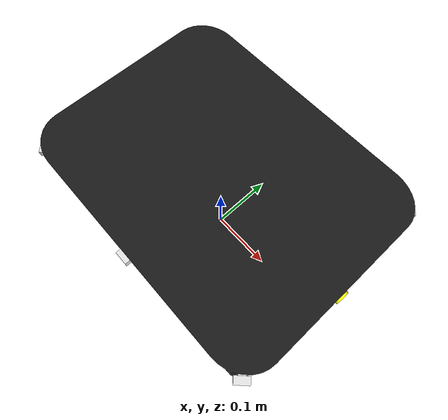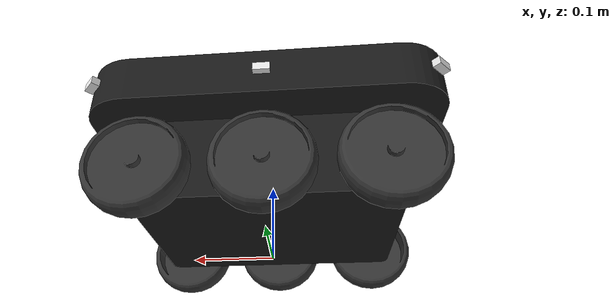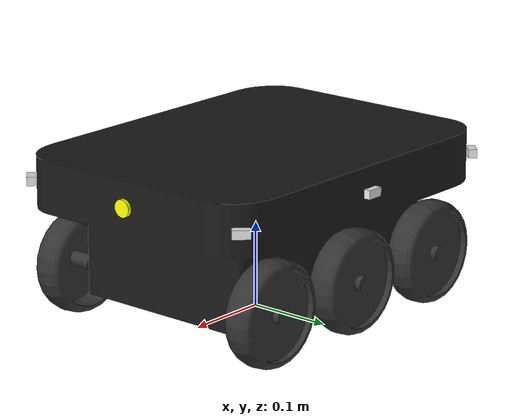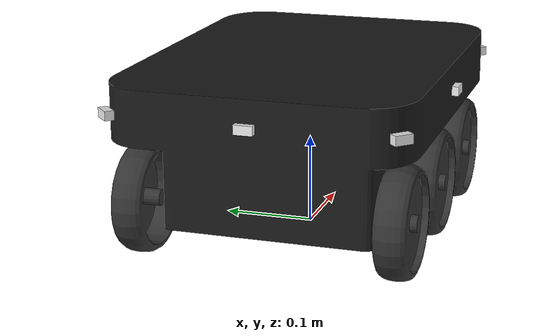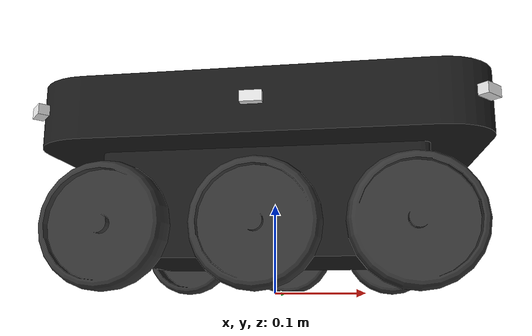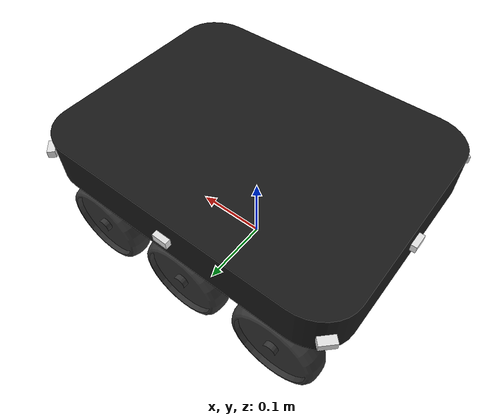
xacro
<?xml version="1.0"?>
<robot xmlns:controller="http://playerstage.sourceforge.net/gazebo/xmlschema/#controller"
  xmlns:interface="http://playerstage.sourceforge.net/gazebo/xmlschema/#interface"
  xmlns:sensor="http://playerstage.sourceforge.net/gazebo/xmlschema/#sensor"
  xmlns:xacro="http://ros.org/wiki/xacro"
  name="kurt_indoor_base">

  <include filename="$(find uos_common_urdf)/common.xacro" />
  <include filename="$(find kurt_base)/urdf/infrared_sonar.urdf.xacro" />
  <include filename="$(find uos_common_urdf)/urdf/imu.gazebo.urdf.xacro" />

  <xacro:property name="wheel_width" value="0.035" />
  <xacro:property name="wheel_radius" value="0.060319723" /> <!-- corresponds to wheel_perimeter=0.379 -->
  <xacro:property name="axis_length" value="0.28" />
  <xacro:property name="middle_axis_length" value="0.28" />
  <xacro:property name="wheel_x_offset" value="0.14" />
  <xacro:property name="wheel_z_offset" value="-0.107" />
  <xacro:property name="turning_adaptation" value="0.69" />
  <xacro:property name="mass" value="15.6" />
  <xacro:property name="imu_stdev" value="0.00017" />

  <link name="base_link">
    <visual>
      <origin xyz="0 0 0" rpy="0 0 0" />
      <geometry>
        <mesh filename="package://kurt_base/meshes/kurt_base_indoor.stl" />
      </geometry>

      <material name="black" >
        <color rgba="0.1 0.1 0.1 1" />
      </material>
    </visual>
    <collision>
      <origin xyz="0 0 0" rpy="0 0 0" />
      <geometry>
        <mesh filename="package://kurt_base/meshes/kurt_base_indoor.stl" />
      </geometry>
    </collision>
    <inertial>
      <mass value="${mass}" />
      <origin xyz="0.0 0.0 -0.040426445" />
      <inertia ixx="${mass * 0.007597848}" ixy="0.0" ixz="0.0"
        iyy="${mass * 0.012357128}" iyz="0.0"
        izz="${mass * 0.015397958}" />
    </inertial>
  </link>

  <gazebo reference="base_link">
    <material value="Gazebo/Black" />
  </gazebo>

  <gazebo>
    <plugin name="kurt_controller" filename="libgazebo_ros_diffdrive_uos.so">
      <alwaysOn>true</alwaysOn>
      <cmd_vel_topic_name>cmd_vel</cmd_vel_topic_name>
      <odom_topic_name>odom</odom_topic_name>
      <joint_states_topic_name>joint_states</joint_states_topic_name>
      <left_front_wheel_joint>left_front_wheel_joint</left_front_wheel_joint>
      <left_middle_wheel_joint>left_middle_wheel_joint</left_middle_wheel_joint>
      <left_rear_wheel_joint>left_rear_wheel_joint</left_rear_wheel_joint>
      <right_front_wheel_joint>right_front_wheel_joint</right_front_wheel_joint>
      <right_middle_wheel_joint>right_middle_wheel_joint</right_middle_wheel_joint>
      <right_rear_wheel_joint>right_rear_wheel_joint</right_rear_wheel_joint>
      <wheel_separation>${middle_axis_length}</wheel_separation>
      <wheel_diameter>${2*wheel_radius}</wheel_diameter>
      <turning_adaptation>${turning_adaptation}</turning_adaptation>
      <torque>4.0</torque>
      <max_velocity>0.9</max_velocity>
      <updateRate>40.0</updateRate>
    </plugin>
  </gazebo>

  <!-- publish ground truth for pose of base_footprint -->
  <gazebo>
    <plugin name="base_footprint_controller" filename="libgazebo_ros_p3d.so">
      <alwaysOn>true</alwaysOn>
      <updateRate>30.0</updateRate>
      <bodyName>base_footprint</bodyName>
      <topicName>base_footprint_pose_ground_truth</topicName>
      <gaussianNoise>0.0</gaussianNoise>
      <frameName>map</frameName>
      <interface:position name="base_footprint_p3d_position_iface" />
    </plugin>
  </gazebo>

  <!-- inertial measurement unit for gazebo -->
  <xacro:imu_gazebo link="base_link" imu_topic="imu" update_rate="100.0" stdev="${imu_stdev}" />

  <xacro:macro name="kurt_wheel" params="name xyz rotate_visual">
    <!-- rotate_visual: 0 for right side, 1 for left side -->
    <link name="${name}_wheel_link">
      <visual>
        <origin xyz="0 0 0" rpy="0 0 ${rotate_visual * M_PI}" />
        <geometry>
          <mesh filename="package://kurt_base/meshes/kurt_wheel_indoor.dae" />
        </geometry>

        <material name="blackish"><color rgba="0.2 0.2 0.2 1"/></material>
      </visual>
      <collision>
        <origin xyz="0 0 0" rpy="0 0 0" />
        <geometry>
          <!-- using STL for collision to fix http://answers.ros.org/question/2368/gazebo-model-wheels-slip-after-upgrade-to-electric -->
          <mesh filename="package://kurt_base/meshes/kurt_wheel_indoor.stl" />
        </geometry>
      </collision>
      <inertial>
        <mass value="0.075" />
        <origin xyz="0 0 0" />
        <inertia ixx="0.000066031" ixy="0.0" ixz="0.0"
          iyy="0.000129786" iyz="0.0"
          izz="0.000066031" />
      </inertial>
    </link>

    <!-- friction parameters -->
    <gazebo reference="${name}_wheel_link">
      <!-- PR2: -->

      <!-- Turtlebot: -->
      <mu1 value="10"/>
      <mu2 value="10"/>
      <kp value="100000000.0"/>
      <kd value="10000.0"/>
      <fdir1 value="1 0 0"/>  <!-- see http://answers.ros.org/question/607/rotation-error-in-gazebo-simulation -->
    </gazebo>

    <joint name="${name}_wheel_joint" type="continuous">
      <origin xyz="${xyz}" rpy="0 0 0" />
      <parent link="base_link"/>
      <child link="${name}_wheel_link"/>
      <axis xyz="0 1 0"/>
    </joint>
  </xacro:macro>

  <xacro:kurt_wheel name="left_front" xyz="${wheel_x_offset} ${axis_length/2} ${wheel_z_offset}" rotate_visual="1" />
  <xacro:kurt_wheel name="left_middle" xyz="0 ${middle_axis_length/2} ${wheel_z_offset}" rotate_visual="1" />
  <xacro:kurt_wheel name="left_rear" xyz="${-wheel_x_offset} ${axis_length/2} ${wheel_z_offset}" rotate_visual="1" />
  <xacro:kurt_wheel name="right_front" xyz="${wheel_x_offset} ${-axis_length/2} ${wheel_z_offset}" rotate_visual="0" />
  <xacro:kurt_wheel name="right_middle" xyz="0 ${-middle_axis_length/2} ${wheel_z_offset}" rotate_visual="0" />
  <xacro:kurt_wheel name="right_rear" xyz="${-wheel_x_offset} ${-axis_length/2} ${wheel_z_offset}" rotate_visual="0" />

  <!-- base_footprint is a fictitious link(frame) that is on the ground right below base_link origin,
       navigation stack dedpends on this frame -->
  <link name="base_footprint">
    <!-- this needs to have a fake inertial element, otherwise all children will be ignored by Gazebo -->
    <inertial>
      <mass value="0.0001" />
      <origin xyz="0 0 0" />
      <inertia ixx="0.0001" ixy="0.0" ixz="0.0"
        iyy="0.0001" iyz="0.0"
        izz="0.0001" />
    </inertial>
  </link>

  <joint name="base_footprint_joint" type="fixed">
    <origin xyz="0 0 ${-wheel_z_offset + wheel_radius}" rpy="0 0 0" />
    <parent link="base_footprint"/>
    <child link="base_link" />
  </joint>
</robot>

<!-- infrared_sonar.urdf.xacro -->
<robot
  xmlns:xacro="http://ros.org/wiki/xacro"
  name="rotunit">

  <include filename="$(find uos_common_urdf)/common.xacro" />

  <link name="ultrasound_front">
    <visual>
      <origin xyz="0 0 0" rpy="0 ${M_PI/2} 0" />
      <geometry>
        <cylinder radius="0.01" length="0.005"/>
      </geometry>
      <material name="yellow">
        <color rgba="1.0 1.0 0.0 1.0"/>
      </material>
    </visual>
    <collision>
      <origin xyz="0 0 0" rpy="0 ${M_PI/2} 0" />
      <geometry>
        <cylinder radius="0.01" length="0.005"/>
      </geometry>
    </collision>
    <cylinder_inertial radius="0.01" length="0.005" mass="0.01" />
  </link>

  <xacro:macro name="ir_sensor" params="name">
    <link name="${name}">
      <visual>
        <origin xyz="0 0 0" rpy="0 0 0" />
        <geometry>
          <box size="0.01 0.02 0.01" />
        </geometry>
        <material name="light_grey">
          <color rgba="0.9 0.9 0.9 1.0"/>
        </material>
      </visual>
      <collision>
        <origin xyz="0 0 0" rpy="0 0 0" />
        <geometry>
          <box size="0.01 0.02 0.01" />
        </geometry>
      </collision>
      <xacro:box_inertial x="0.01" y="0.02" z="0.01" mass="0.01" />
    </link>
  </xacro:macro>

  <xacro:ir_sensor name="ir_right_front" />
  <xacro:ir_sensor name="ir_right" />
  <xacro:ir_sensor name="ir_right_back" />
  <xacro:ir_sensor name="ir_back" />
  <xacro:ir_sensor name="ir_left_back" />
  <xacro:ir_sensor name="ir_left" />
  <xacro:ir_sensor name="ir_left_front" />

  <joint name="base_ultrasound_front" type="fixed">
    <parent link="base_link" />
    <child link="ultrasound_front" />
    <origin xyz="0.217 0 0" rpy="0 0 0"/>
  </joint>

  <joint name="base_ir_right_front" type="fixed">
    <parent link="base_link" />
    <child link="ir_right_front" />
    <origin xyz="0.203 -0.153 0" rpy="0 0 ${7/4 * M_PI}"/>
  </joint>

  <joint name="base_ir_right" type="fixed">
    <parent link="base_link" />
    <child link="ir_right" />
    <origin xyz="0 -0.165 0" rpy="0 0 ${3/2 * M_PI}"/>
  </joint>

  <joint name="base_ir_right_back" type="fixed">
    <parent link="base_link" />
    <child link="ir_right_back" />
    <origin xyz="-0.203 -0.153 0" rpy="0 0 ${5/4 * M_PI}"/>
  </joint>

  <joint name="base_ir_back" type="fixed">
    <parent link="base_link" />
    <child link="ir_back" />
    <origin xyz="-0.217 0 0" rpy="0 0 ${M_PI}"/>
  </joint>

  <joint name="base_ir_left_back" type="fixed">
    <parent link="base_link" />
    <child link="ir_left_back" />
    <origin xyz="-0.203 0.153 0" rpy="0 0 ${3/4 * M_PI}"/>
  </joint>

  <joint name="base_ir_left" type="fixed">
    <parent link="base_link" />
    <child link="ir_left" />
    <origin xyz="0 0.165 0" rpy="0 0 ${1/2 * M_PI}"/>
  </joint>

  <joint name="base_ir_left_front" type="fixed">
    <parent link="base_link" />
    <child link="ir_left_front" />
    <origin xyz="0.203 0.153 0" rpy="0 0 ${1/4 * M_PI}"/>
  </joint>
</robot>
